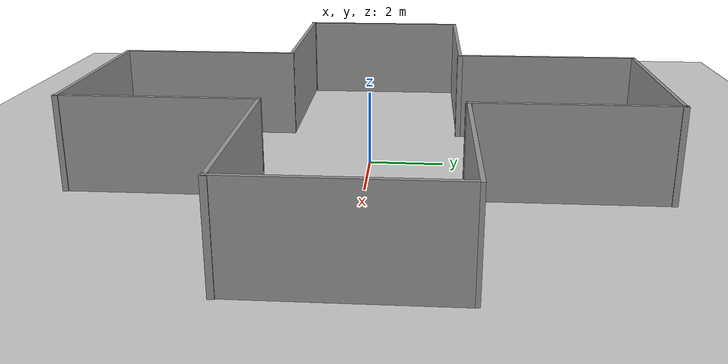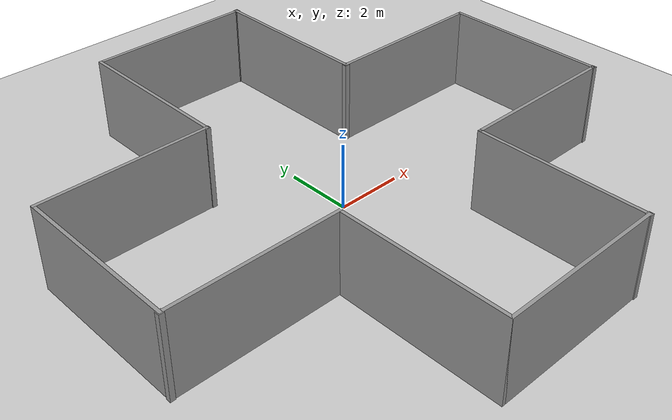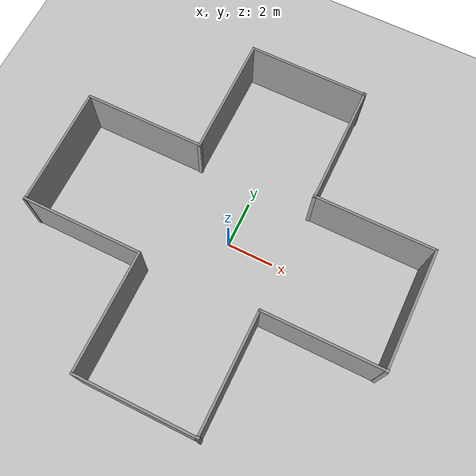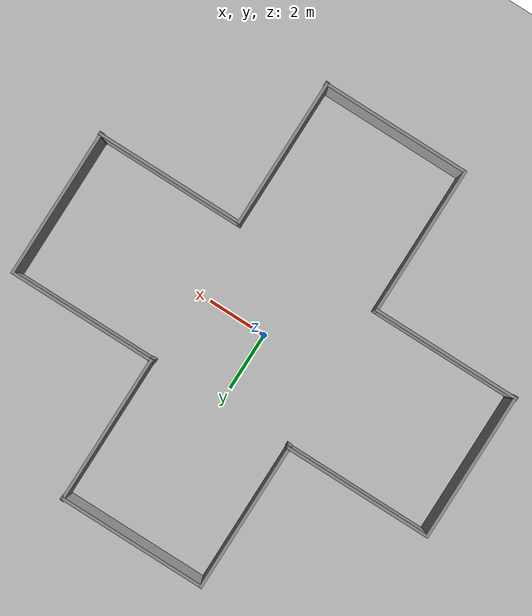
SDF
<?xml version='1.0' encoding='utf-8'?>
<sdf version="1.6">
  <world name="cross_small">
    <gravity>0 0 -9.8</gravity>
    <physics default="0" name="default_physics" type="ode">
      <max_step_size>0.001</max_step_size>
      <real_time_factor>1</real_time_factor>
      <real_time_update_rate>1000</real_time_update_rate>
    </physics>

    <include>
      <uri>model://sun</uri>
    </include>

    <include>
      <uri>model://ground_plane</uri>
    </include>

    <include>
      <uri>model://cross_small</uri>
      <static>true</static>
      <pose>0 0 0 0 0 0</pose>
    </include>

  </world>
</sdf>

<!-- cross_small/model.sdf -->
<sdf version='1.7'>
  <model name='cross_small'>
    <pose>7.5 7.5 0 0 -0 0</pose>
    <link name='Wall_0'>
      <collision name='Wall_0_Collision'>
        <geometry>
          <box>
            <size>5.1 0.1 2.5</size>
          </box>
        </geometry>
        <pose>0 0 1.25 0 -0 0</pose>
      </collision>
      <visual name='Wall_0_Visual'>
        <pose>0 0 1.25 0 -0 0</pose>
        <geometry>
          <box>
            <size>5.1 0.1 2.5</size>
          </box>
        </geometry>
        <material>
          <script>
            <uri>file://media/materials/scripts/gazebo.material</uri>
            <name>Gazebo/Grey</name>
          </script>
          <ambient>1 1 1 1</ambient>
        </material>
        <meta>
          <layer>0</layer>
        </meta>
      </visual>
      <pose>-7.5 0 0 0 -0 1.5708</pose>
    </link>
    <link name='Wall_11'>
      <collision name='Wall_11_Collision'>
        <geometry>
          <box>
            <size>0.15 0.15 2.5</size>
          </box>
        </geometry>
        <pose>0 0 1.25 0 -0 0</pose>
      </collision>
      <visual name='Wall_11_Visual'>
        <pose>0 0 1.25 0 -0 0</pose>
        <geometry>
          <box>
            <size>0.15 0.15 2.5</size>
          </box>
        </geometry>
        <material>
          <script>
            <uri>file://media/materials/scripts/gazebo.material</uri>
            <name>Gazebo/Grey</name>
          </script>
          <ambient>1 1 1 1</ambient>
        </material>
        <meta>
          <layer>0</layer>
        </meta>
      </visual>
      <pose>2.5 -7.5 0 0 -0 0</pose>
    </link>
    <link name='Wall_12'>
      <collision name='Wall_12_Collision'>
        <geometry>
          <box>
            <size>5.1 0.1 2.5</size>
          </box>
        </geometry>
        <pose>0 0 1.25 0 -0 0</pose>
      </collision>
      <visual name='Wall_12_Visual'>
        <pose>0 0 1.25 0 -0 0</pose>
        <geometry>
          <box>
            <size>5.1 0.1 2.5</size>
          </box>
        </geometry>
        <material>
          <script>
            <uri>file://media/materials/scripts/gazebo.material</uri>
            <name>Gazebo/Grey</name>
          </script>
          <ambient>1 1 1 1</ambient>
        </material>
        <meta>
          <layer>0</layer>
        </meta>
      </visual>
      <pose>2.5 -5 0 0 -0 1.5708</pose>
    </link>
    <link name='Wall_14'>
      <collision name='Wall_14_Collision'>
        <geometry>
          <box>
            <size>5.1 0.1 2.5</size>
          </box>
        </geometry>
        <pose>0 0 1.25 0 -0 0</pose>
      </collision>
      <visual name='Wall_14_Visual'>
        <pose>0 0 1.25 0 -0 0</pose>
        <geometry>
          <box>
            <size>5.1 0.1 2.5</size>
          </box>
        </geometry>
        <material>
          <script>
            <uri>file://media/materials/scripts/gazebo.material</uri>
            <name>Gazebo/Grey</name>
          </script>
          <ambient>1 1 1 1</ambient>
        </material>
        <meta>
          <layer>0</layer>
        </meta>
      </visual>
      <pose>5 -2.5 0 0 -0 0</pose>
    </link>
    <link name='Wall_16'>
      <collision name='Wall_16_Collision'>
        <geometry>
          <box>
            <size>0.15 0.15 2.5</size>
          </box>
        </geometry>
        <pose>0 0 1.25 0 -0 0</pose>
      </collision>
      <visual name='Wall_16_Visual'>
        <pose>0 0 1.25 0 -0 0</pose>
        <geometry>
          <box>
            <size>0.15 0.15 2.5</size>
          </box>
        </geometry>
        <material>
          <script>
            <uri>file://media/materials/scripts/gazebo.material</uri>
            <name>Gazebo/Grey</name>
          </script>
          <ambient>1 1 1 1</ambient>
        </material>
        <meta>
          <layer>0</layer>
        </meta>
      </visual>
      <pose>7.5 -2.5 0 0 -0 0</pose>
    </link>
    <link name='Wall_17'>
      <collision name='Wall_17_Collision'>
        <geometry>
          <box>
            <size>5.1 0.1 2.5</size>
          </box>
        </geometry>
        <pose>0 0 1.25 0 -0 0</pose>
      </collision>
      <visual name='Wall_17_Visual'>
        <pose>0 0 1.25 0 -0 0</pose>
        <geometry>
          <box>
            <size>5.1 0.1 2.5</size>
          </box>
        </geometry>
        <material>
          <script>
            <uri>file://media/materials/scripts/gazebo.material</uri>
            <name>Gazebo/Grey</name>
          </script>
          <ambient>1 1 1 1</ambient>
        </material>
        <meta>
          <layer>0</layer>
        </meta>
      </visual>
      <pose>7.5 0 0 0 -0 1.5708</pose>
    </link>
    <link name='Wall_19'>
      <collision name='Wall_19_Collision'>
        <geometry>
          <box>
            <size>5.1 0.1 2.5</size>
          </box>
        </geometry>
        <pose>0 0 1.25 0 -0 0</pose>
      </collision>
      <visual name='Wall_19_Visual'>
        <pose>0 0 1.25 0 -0 0</pose>
        <geometry>
          <box>
            <size>5.1 0.1 2.5</size>
          </box>
        </geometry>
        <material>
          <script>
            <uri>file://media/materials/scripts/gazebo.material</uri>
            <name>Gazebo/Grey</name>
          </script>
          <ambient>1 1 1 1</ambient>
        </material>
        <meta>
          <layer>0</layer>
        </meta>
      </visual>
      <pose>-5 2.5 0 0 -0 0</pose>
    </link>
    <link name='Wall_2'>
      <collision name='Wall_2_Collision'>
        <geometry>
          <box>
            <size>0.15 0.15 2.5</size>
          </box>
        </geometry>
        <pose>0 0 1.25 0 -0 0</pose>
      </collision>
      <visual name='Wall_2_Visual'>
        <pose>0 0 1.25 0 -0 0</pose>
        <geometry>
          <box>
            <size>0.15 0.15 2.5</size>
          </box>
        </geometry>
        <material>
          <script>
            <uri>file://media/materials/scripts/gazebo.material</uri>
            <name>Gazebo/Grey</name>
          </script>
          <ambient>1 1 1 1</ambient>
        </material>
        <meta>
          <layer>0</layer>
        </meta>
      </visual>
      <pose>-7.5 -2.5 0 0 -0 0</pose>
    </link>
    <link name='Wall_21'>
      <collision name='Wall_21_Collision'>
        <geometry>
          <box>
            <size>0.15 0.15 2.5</size>
          </box>
        </geometry>
        <pose>0 0 1.25 0 -0 0</pose>
      </collision>
      <visual name='Wall_21_Visual'>
        <pose>0 0 1.25 0 -0 0</pose>
        <geometry>
          <box>
            <size>0.15 0.15 2.5</size>
          </box>
        </geometry>
        <material>
          <script>
            <uri>file://media/materials/scripts/gazebo.material</uri>
            <name>Gazebo/Grey</name>
          </script>
          <ambient>1 1 1 1</ambient>
        </material>
        <meta>
          <layer>0</layer>
        </meta>
      </visual>
      <pose>-2.5 2.5 0 0 -0 0</pose>
    </link>
    <link name='Wall_22'>
      <collision name='Wall_22_Collision'>
        <geometry>
          <box>
            <size>5.1 0.1 2.5</size>
          </box>
        </geometry>
        <pose>0 0 1.25 0 -0 0</pose>
      </collision>
      <visual name='Wall_22_Visual'>
        <pose>0 0 1.25 0 -0 0</pose>
        <geometry>
          <box>
            <size>5.1 0.1 2.5</size>
          </box>
        </geometry>
        <material>
          <script>
            <uri>file://media/materials/scripts/gazebo.material</uri>
            <name>Gazebo/Grey</name>
          </script>
          <ambient>1 1 1 1</ambient>
        </material>
        <meta>
          <layer>0</layer>
        </meta>
      </visual>
      <pose>-2.5 5 0 0 -0 1.5708</pose>
    </link>
    <link name='Wall_24'>
      <collision name='Wall_24_Collision'>
        <geometry>
          <box>
            <size>5.1 0.1 2.5</size>
          </box>
        </geometry>
        <pose>0 0 1.25 0 -0 0</pose>
      </collision>
      <visual name='Wall_24_Visual'>
        <pose>0 0 1.25 0 -0 0</pose>
        <geometry>
          <box>
            <size>5.1 0.1 2.5</size>
          </box>
        </geometry>
        <material>
          <script>
            <uri>file://media/materials/scripts/gazebo.material</uri>
            <name>Gazebo/Grey</name>
          </script>
          <ambient>1 1 1 1</ambient>
        </material>
        <meta>
          <layer>0</layer>
        </meta>
      </visual>
      <pose>0 7.5 0 0 -0 0</pose>
    </link>
    <link name='Wall_26'>
      <collision name='Wall_26_Collision'>
        <geometry>
          <box>
            <size>0.15 0.15 2.5</size>
          </box>
        </geometry>
        <pose>0 0 1.25 0 -0 0</pose>
      </collision>
      <visual name='Wall_26_Visual'>
        <pose>0 0 1.25 0 -0 0</pose>
        <geometry>
          <box>
            <size>0.15 0.15 2.5</size>
          </box>
        </geometry>
        <material>
          <script>
            <uri>file://media/materials/scripts/gazebo.material</uri>
            <name>Gazebo/Grey</name>
          </script>
          <ambient>1 1 1 1</ambient>
        </material>
        <meta>
          <layer>0</layer>
        </meta>
      </visual>
      <pose>2.5 7.5 0 0 -0 0</pose>
    </link>
    <link name='Wall_27'>
      <collision name='Wall_27_Collision'>
        <geometry>
          <box>
            <size>5.1 0.1 2.5</size>
          </box>
        </geometry>
        <pose>0 0 1.25 0 -0 0</pose>
      </collision>
      <visual name='Wall_27_Visual'>
        <pose>0 0 1.25 0 -0 0</pose>
        <geometry>
          <box>
            <size>5.1 0.1 2.5</size>
          </box>
        </geometry>
        <material>
          <script>
            <uri>file://media/materials/scripts/gazebo.material</uri>
            <name>Gazebo/Grey</name>
          </script>
          <ambient>1 1 1 1</ambient>
        </material>
        <meta>
          <layer>0</layer>
        </meta>
      </visual>
      <pose>2.5 5 0 0 -0 -1.5708</pose>
    </link>
    <link name='Wall_29'>
      <collision name='Wall_29_Collision'>
        <geometry>
          <box>
            <size>0.15 0.15 2.5</size>
          </box>
        </geometry>
        <pose>0 0 1.25 0 -0 0</pose>
      </collision>
      <visual name='Wall_29_Visual'>
        <pose>0 0 1.25 0 -0 0</pose>
        <geometry>
          <box>
            <size>0.15 0.15 2.5</size>
          </box>
        </geometry>
        <material>
          <script>
            <uri>file://media/materials/scripts/gazebo.material</uri>
            <name>Gazebo/Grey</name>
          </script>
          <ambient>1 1 1 1</ambient>
        </material>
        <meta>
          <layer>0</layer>
        </meta>
      </visual>
      <pose>2.5 2.5 0 0 -0 0</pose>
    </link>
    <link name='Wall_3'>
      <collision name='Wall_3_Collision'>
        <geometry>
          <box>
            <size>5.1 0.1 2.5</size>
          </box>
        </geometry>
        <pose>0 0 1.25 0 -0 0</pose>
      </collision>
      <visual name='Wall_3_Visual'>
        <pose>0 0 1.25 0 -0 0</pose>
        <geometry>
          <box>
            <size>5.1 0.1 2.5</size>
          </box>
        </geometry>
        <material>
          <script>
            <uri>file://media/materials/scripts/gazebo.material</uri>
            <name>Gazebo/Grey</name>
          </script>
          <ambient>1 1 1 1</ambient>
        </material>
        <meta>
          <layer>0</layer>
        </meta>
      </visual>
      <pose>-5 -2.5 0 0 -0 0</pose>
    </link>
    <link name='Wall_30'>
      <collision name='Wall_30_Collision'>
        <geometry>
          <box>
            <size>5.1 0.1 2.5</size>
          </box>
        </geometry>
        <pose>0 0 1.25 0 -0 0</pose>
      </collision>
      <visual name='Wall_30_Visual'>
        <pose>0 0 1.25 0 -0 0</pose>
        <geometry>
          <box>
            <size>5.1 0.1 2.5</size>
          </box>
        </geometry>
        <material>
          <script>
            <uri>file://media/materials/scripts/gazebo.material</uri>
            <name>Gazebo/Grey</name>
          </script>
          <ambient>1 1 1 1</ambient>
        </material>
        <meta>
          <layer>0</layer>
        </meta>
      </visual>
      <pose>5 2.5 0 0 -0 0</pose>
    </link>
    <link name='Wall_5'>
      <collision name='Wall_5_Collision'>
        <geometry>
          <box>
            <size>5.1 0.1 2.5</size>
          </box>
        </geometry>
        <pose>0 0 1.25 0 -0 0</pose>
      </collision>
      <visual name='Wall_5_Visual'>
        <pose>0 0 1.25 0 -0 0</pose>
        <geometry>
          <box>
            <size>5.1 0.1 2.5</size>
          </box>
        </geometry>
        <material>
          <script>
            <uri>file://media/materials/scripts/gazebo.material</uri>
            <name>Gazebo/Grey</name>
          </script>
          <ambient>1 1 1 1</ambient>
        </material>
        <meta>
          <layer>0</layer>
        </meta>
      </visual>
      <pose>-2.5 -5 0 0 -0 -1.5708</pose>
    </link>
    <link name='Wall_7'>
      <collision name='Wall_7_Collision'>
        <geometry>
          <box>
            <size>5.1 0.1 2.5</size>
          </box>
        </geometry>
        <pose>0 0 1.25 0 -0 0</pose>
      </collision>
      <visual name='Wall_7_Visual'>
        <pose>0 0 1.25 0 -0 0</pose>
        <geometry>
          <box>
            <size>5.1 0.1 2.5</size>
          </box>
        </geometry>
        <material>
          <script>
            <uri>file://media/materials/scripts/gazebo.material</uri>
            <name>Gazebo/Grey</name>
          </script>
          <ambient>1 1 1 1</ambient>
        </material>
        <meta>
          <layer>0</layer>
        </meta>
      </visual>
      <pose>0 -7.5 0 0 -0 0</pose>
    </link>
    <link name='Wall_9'>
      <collision name='Wall_9_Collision'>
        <geometry>
          <box>
            <size>0.15 0.15 2.5</size>
          </box>
        </geometry>
        <pose>0 0 1.25 0 -0 0</pose>
      </collision>
      <visual name='Wall_9_Visual'>
        <pose>0 0 1.25 0 -0 0</pose>
        <geometry>
          <box>
            <size>0.15 0.15 2.5</size>
          </box>
        </geometry>
        <material>
          <script>
            <uri>file://media/materials/scripts/gazebo.material</uri>
            <name>Gazebo/Grey</name>
          </script>
          <ambient>1 1 1 1</ambient>
        </material>
        <meta>
          <layer>0</layer>
        </meta>
      </visual>
      <pose>2.5 -7.5 0 0 -0 0</pose>
    </link>
    <static>1</static>
  </model>
</sdf>
